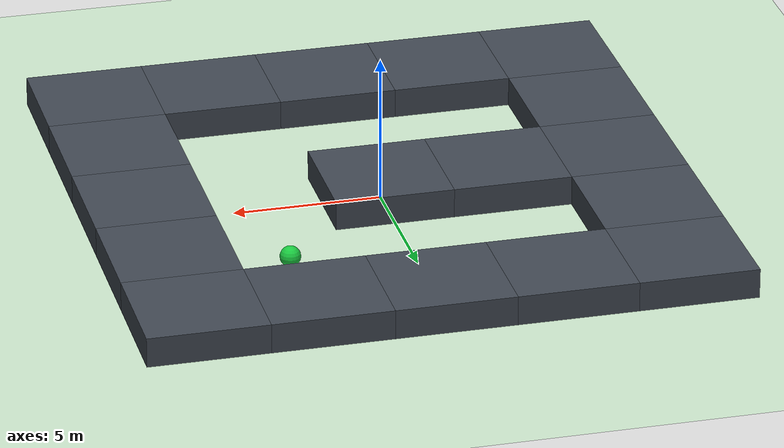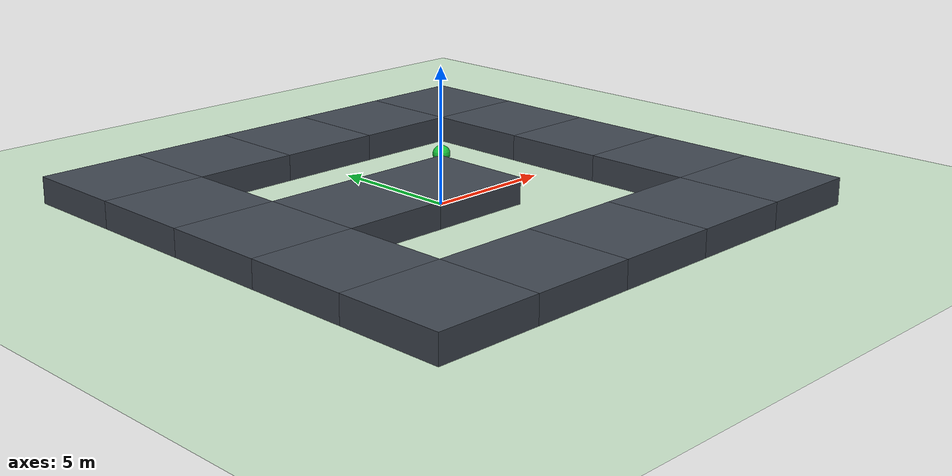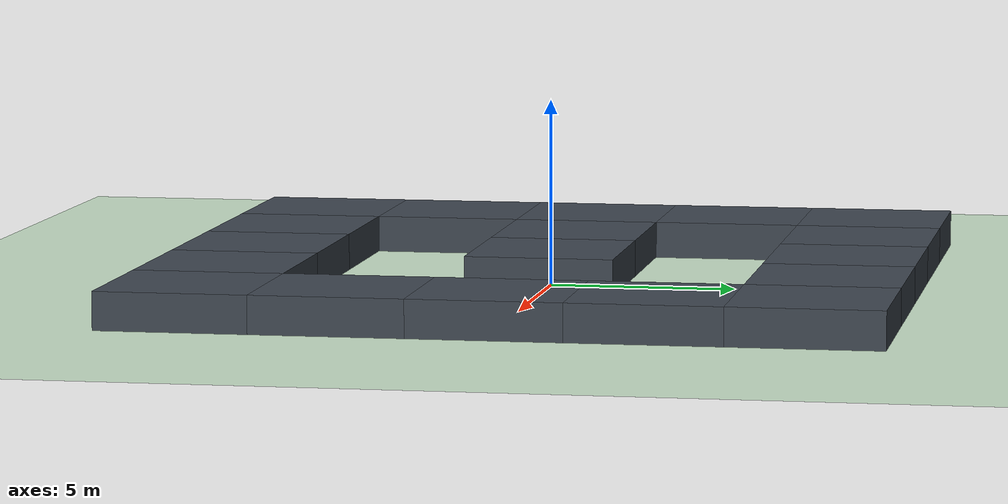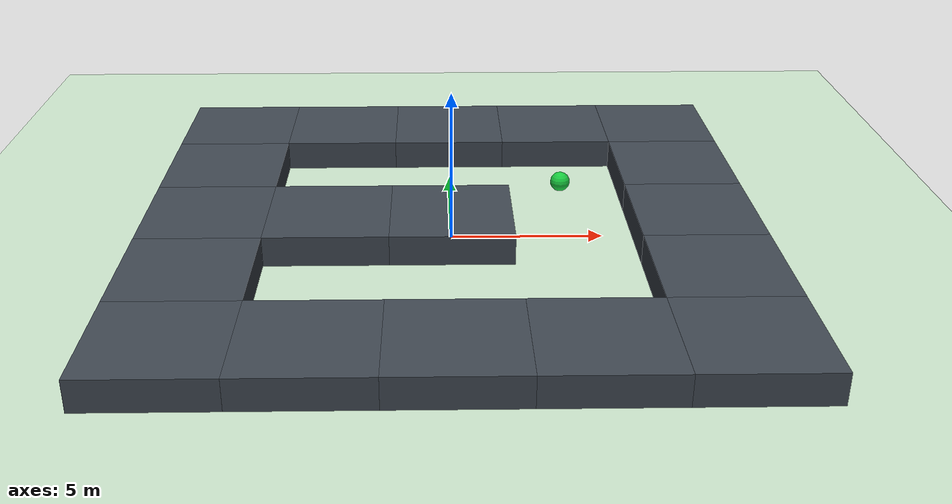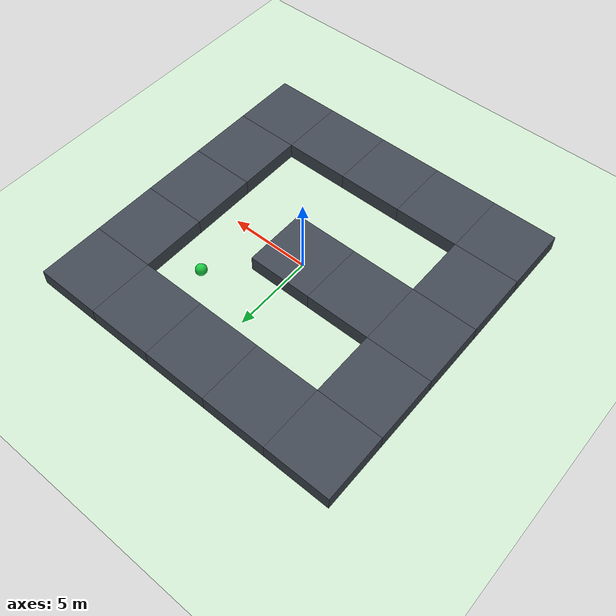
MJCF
<!-- Generated from Gymnasium Ant-v5 ant.xml with Farama U-maze walls. -->
<mujoco model="ant_maze">
  <compiler angle="degree" coordinate="local" inertiafromgeom="true" />
  <option integrator="RK4" timestep="0.01" />
  <visual>
    <global offwidth="1280" offheight="960" />
  </visual>
  <custom>
    <numeric data="0.0 0.0 0.55 1.0 0.0 0.0 0.0 0.0 1.0 0.0 -1.0 0.0 -1.0 0.0 1.0" name="init_qpos" />
  </custom>
  <default>
    <joint armature="1" damping="1" limited="true" />
    <geom conaffinity="0" condim="3" density="5.0" friction="1 0.5 0.5" margin="0.01" rgba="0.8 0.6 0.4 1" />
  </default>
  <asset>
    <texture builtin="gradient" height="100" rgb1="1 1 1" rgb2="0 0 0" type="skybox" width="100" />
    <texture builtin="flat" height="1278" mark="cross" markrgb="1 1 1" name="texgeom" random="0.01" rgb1="0.8 0.6 0.4" rgb2="0.8 0.6 0.4" type="cube" width="127" />
    <texture builtin="checker" height="100" name="texplane" rgb1="0 0 0" rgb2="0.8 0.8 0.8" type="2d" width="100" />
    <material name="MatPlane" reflectance="0.5" shininess="1" specular="1" texrepeat="60 60" texture="texplane" />
    <material name="geom" texture="texgeom" texuniform="true" />
  </asset>
  <worldbody>
    <light cutoff="100" diffuse="1 1 1" dir="-0 0 -1.3" directional="true" exponent="1" pos="0 0 1.3" specular=".1 .1 .1" />
    <geom conaffinity="1" condim="3" material="MatPlane" name="floor" pos="0 0 0" rgba="0.8 0.9 0.8 1" size="40 40 40" type="plane" />
    <body name="torso" pos="0 0 0.75">
      <camera name="track" mode="trackcom" pos="0 -3 0.3" xyaxes="1 0 0 0 0 1" />
      <geom name="torso_geom" pos="0 0 0" size="0.25" type="sphere" />
      <joint armature="0" damping="0" limited="false" margin="0.01" name="root" pos="0 0 0" type="free" />
      <body name="front_left_leg" pos="0 0 0">
        <geom fromto="0.0 0.0 0.0 0.2 0.2 0.0" name="aux_1_geom" size="0.08" type="capsule" />
        <body name="aux_1" pos="0.2 0.2 0">
          <joint axis="0 0 1" name="hip_1" pos="0.0 0.0 0.0" range="-30 30" type="hinge" />
          <geom fromto="0.0 0.0 0.0 0.2 0.2 0.0" name="left_leg_geom" size="0.08" type="capsule" />
          <body pos="0.2 0.2 0">
            <joint axis="-1 1 0" name="ankle_1" pos="0.0 0.0 0.0" range="30 70" type="hinge" />
            <geom fromto="0.0 0.0 0.0 0.4 0.4 0.0" name="left_ankle_geom" size="0.08" type="capsule" />
          </body>
        </body>
      </body>
      <body name="front_right_leg" pos="0 0 0">
        <geom fromto="0.0 0.0 0.0 -0.2 0.2 0.0" name="aux_2_geom" size="0.08" type="capsule" />
        <body name="aux_2" pos="-0.2 0.2 0">
          <joint axis="0 0 1" name="hip_2" pos="0.0 0.0 0.0" range="-30 30" type="hinge" />
          <geom fromto="0.0 0.0 0.0 -0.2 0.2 0.0" name="right_leg_geom" size="0.08" type="capsule" />
          <body pos="-0.2 0.2 0">
            <joint axis="1 1 0" name="ankle_2" pos="0.0 0.0 0.0" range="-70 -30" type="hinge" />
            <geom fromto="0.0 0.0 0.0 -0.4 0.4 0.0" name="right_ankle_geom" size="0.08" type="capsule" />
          </body>
        </body>
      </body>
      <body name="back_leg" pos="0 0 0">
        <geom fromto="0.0 0.0 0.0 -0.2 -0.2 0.0" name="aux_3_geom" size="0.08" type="capsule" />
        <body name="aux_3" pos="-0.2 -0.2 0">
          <joint axis="0 0 1" name="hip_3" pos="0.0 0.0 0.0" range="-30 30" type="hinge" />
          <geom fromto="0.0 0.0 0.0 -0.2 -0.2 0.0" name="back_leg_geom" size="0.08" type="capsule" />
          <body pos="-0.2 -0.2 0">
            <joint axis="-1 1 0" name="ankle_3" pos="0.0 0.0 0.0" range="-70 -30" type="hinge" />
            <geom fromto="0.0 0.0 0.0 -0.4 -0.4 0.0" name="third_ankle_geom" size="0.08" type="capsule" />
          </body>
        </body>
      </body>
      <body name="right_back_leg" pos="0 0 0">
        <geom fromto="0.0 0.0 0.0 0.2 -0.2 0.0" name="aux_4_geom" size="0.08" type="capsule" />
        <body name="aux_4" pos="0.2 -0.2 0">
          <joint axis="0 0 1" name="hip_4" pos="0.0 0.0 0.0" range="-30 30" type="hinge" />
          <geom fromto="0.0 0.0 0.0 0.2 -0.2 0.0" name="rightback_leg_geom" size="0.08" type="capsule" />
          <body pos="0.2 -0.2 0">
            <joint axis="1 1 0" name="ankle_4" pos="0.0 0.0 0.0" range="30 70" type="hinge" />
            <geom fromto="0.0 0.0 0.0 0.4 -0.4 0.0" name="fourth_ankle_geom" size="0.08" type="capsule" />
          </body>
        </body>
      </body>
    </body>
    <geom name="maze_wall_0_0" type="box" pos="-8 8 0.5" size="2 2 0.5" rgba="0.25 0.28 0.32 1" friction="1 0.5 0.5" condim="3" conaffinity="1" />
    <geom name="maze_wall_0_1" type="box" pos="-4 8 0.5" size="2 2 0.5" rgba="0.25 0.28 0.32 1" friction="1 0.5 0.5" condim="3" conaffinity="1" />
    <geom name="maze_wall_0_2" type="box" pos="0 8 0.5" size="2 2 0.5" rgba="0.25 0.28 0.32 1" friction="1 0.5 0.5" condim="3" conaffinity="1" />
    <geom name="maze_wall_0_3" type="box" pos="4 8 0.5" size="2 2 0.5" rgba="0.25 0.28 0.32 1" friction="1 0.5 0.5" condim="3" conaffinity="1" />
    <geom name="maze_wall_0_4" type="box" pos="8 8 0.5" size="2 2 0.5" rgba="0.25 0.28 0.32 1" friction="1 0.5 0.5" condim="3" conaffinity="1" />
    <geom name="maze_wall_1_0" type="box" pos="-8 4 0.5" size="2 2 0.5" rgba="0.25 0.28 0.32 1" friction="1 0.5 0.5" condim="3" conaffinity="1" />
    <geom name="maze_wall_1_4" type="box" pos="8 4 0.5" size="2 2 0.5" rgba="0.25 0.28 0.32 1" friction="1 0.5 0.5" condim="3" conaffinity="1" />
    <geom name="maze_wall_2_0" type="box" pos="-8 0 0.5" size="2 2 0.5" rgba="0.25 0.28 0.32 1" friction="1 0.5 0.5" condim="3" conaffinity="1" />
    <geom name="maze_wall_2_1" type="box" pos="-4 0 0.5" size="2 2 0.5" rgba="0.25 0.28 0.32 1" friction="1 0.5 0.5" condim="3" conaffinity="1" />
    <geom name="maze_wall_2_2" type="box" pos="0 0 0.5" size="2 2 0.5" rgba="0.25 0.28 0.32 1" friction="1 0.5 0.5" condim="3" conaffinity="1" />
    <geom name="maze_wall_2_4" type="box" pos="8 0 0.5" size="2 2 0.5" rgba="0.25 0.28 0.32 1" friction="1 0.5 0.5" condim="3" conaffinity="1" />
    <geom name="maze_wall_3_0" type="box" pos="-8 -4 0.5" size="2 2 0.5" rgba="0.25 0.28 0.32 1" friction="1 0.5 0.5" condim="3" conaffinity="1" />
    <geom name="maze_wall_3_4" type="box" pos="8 -4 0.5" size="2 2 0.5" rgba="0.25 0.28 0.32 1" friction="1 0.5 0.5" condim="3" conaffinity="1" />
    <geom name="maze_wall_4_0" type="box" pos="-8 -8 0.5" size="2 2 0.5" rgba="0.25 0.28 0.32 1" friction="1 0.5 0.5" condim="3" conaffinity="1" />
    <geom name="maze_wall_4_1" type="box" pos="-4 -8 0.5" size="2 2 0.5" rgba="0.25 0.28 0.32 1" friction="1 0.5 0.5" condim="3" conaffinity="1" />
    <geom name="maze_wall_4_2" type="box" pos="0 -8 0.5" size="2 2 0.5" rgba="0.25 0.28 0.32 1" friction="1 0.5 0.5" condim="3" conaffinity="1" />
    <geom name="maze_wall_4_3" type="box" pos="4 -8 0.5" size="2 2 0.5" rgba="0.25 0.28 0.32 1" friction="1 0.5 0.5" condim="3" conaffinity="1" />
    <geom name="maze_wall_4_4" type="box" pos="8 -8 0.5" size="2 2 0.5" rgba="0.25 0.28 0.32 1" friction="1 0.5 0.5" condim="3" conaffinity="1" />
    <site name="target" type="sphere" pos="4 4 0.25" size="0.35" rgba="0.1 0.8 0.25 0.9" />
  </worldbody>
  <actuator>
    <motor ctrllimited="true" ctrlrange="-1.0 1.0" joint="hip_4" gear="150" />
    <motor ctrllimited="true" ctrlrange="-1.0 1.0" joint="ankle_4" gear="150" />
    <motor ctrllimited="true" ctrlrange="-1.0 1.0" joint="hip_1" gear="150" />
    <motor ctrllimited="true" ctrlrange="-1.0 1.0" joint="ankle_1" gear="150" />
    <motor ctrllimited="true" ctrlrange="-1.0 1.0" joint="hip_2" gear="150" />
    <motor ctrllimited="true" ctrlrange="-1.0 1.0" joint="ankle_2" gear="150" />
    <motor ctrllimited="true" ctrlrange="-1.0 1.0" joint="hip_3" gear="150" />
    <motor ctrllimited="true" ctrlrange="-1.0 1.0" joint="ankle_3" gear="150" />
  </actuator>
</mujoco>
